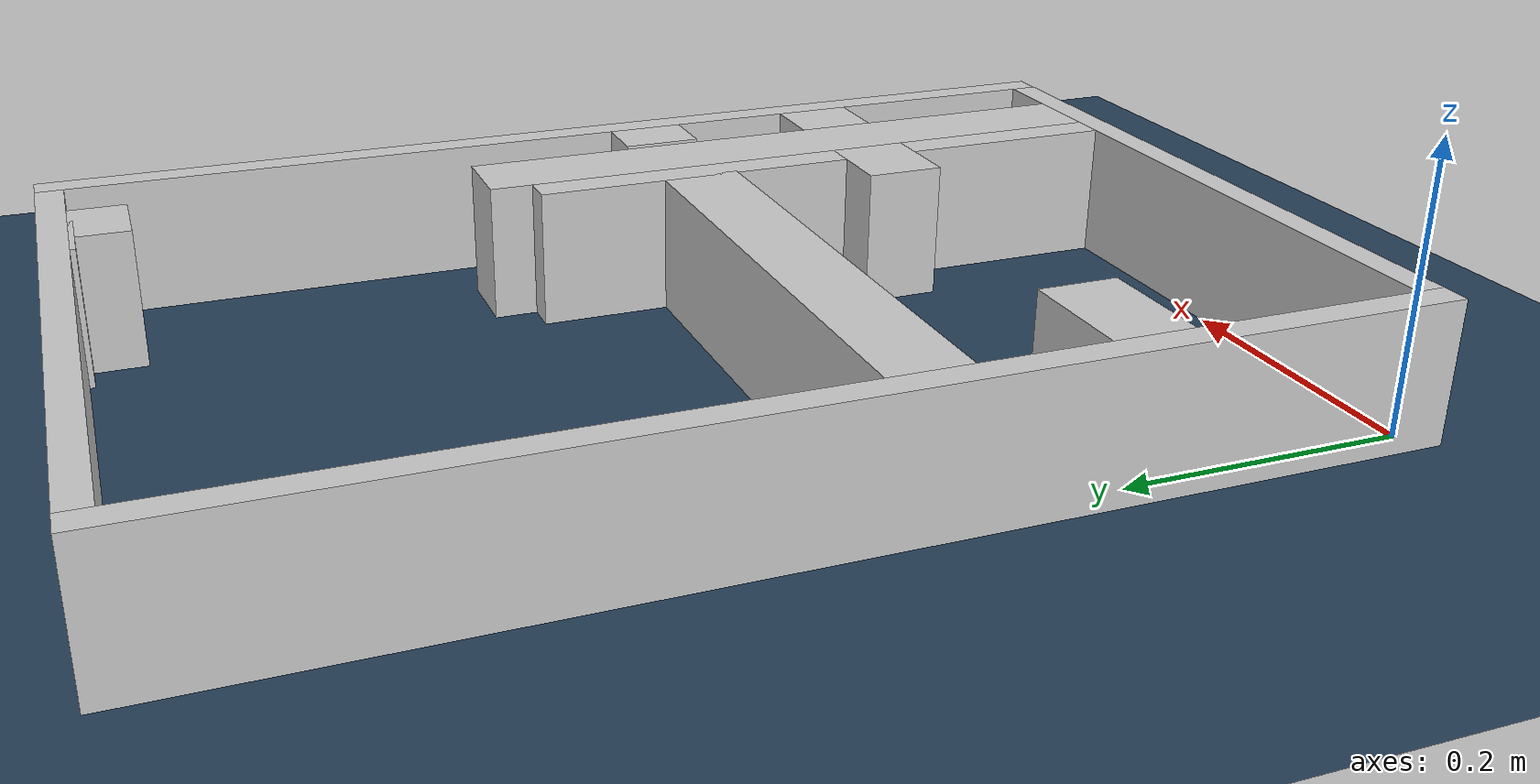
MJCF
<?xml version="1.0" ?>
<mujoco model="generated_real_template">
  <compiler angle="degree"/>
  <option timestep="0.002" integrator="implicitfast" iterations="100" cone="elliptic"/>
  <default>
    <geom density="1"/>
  </default>
  <asset>
    <texture builtin="gradient" height="3072" rgb1="0.3 0.5 0.7" rgb2="0 0 0" type="skybox" width="512"/>
    <texture builtin="checker" height="300" mark="edge" markrgb="0.8 0.8 0.8" name="groundplane" rgb1="0.2 0.3 0.4" rgb2="0.1 0.2 0.3" type="2d" width="300"/>
    <material name="groundplane" reflectance="0.2" texrepeat="5 5" texture="groundplane" texuniform="true"/>
  </asset>
  <worldbody>
    <light dir="0 0 -1" directional="true" pos="0 0 1.5"/>
    <geom name="floor" type="plane" condim="4" friction="0.5 0.005 0.001" material="groundplane" size="0 0 0.05"/>
    <body name="walls">
      <geom name="wall_boundary_left" type="box" condim="4" friction="1.0 0.005 0.0001" rgba="0.8 0.8 0.8 1" pos="-0.010000 0.387500 0.050000" euler="0 0 0.000000" size="0.010000 0.407500 0.050000"/>
      <geom name="wall_boundary_right" type="box" condim="4" friction="1.0 0.005 0.0001" rgba="0.8 0.8 0.8 1" pos="0.500000 0.387500 0.050000" euler="0 0 0.000000" size="0.010000 0.407500 0.050000"/>
      <geom name="wall_boundary_bottom" type="box" condim="4" friction="1.0 0.005 0.0001" rgba="0.8 0.8 0.8 1" pos="0.245000 -0.010000 0.050000" euler="0 0 0.000000" size="0.245000 0.010000 0.050000"/>
      <geom name="wall_boundary_top" type="box" condim="4" friction="1.0 0.005 0.0001" rgba="0.8 0.8 0.8 1" pos="0.245000 0.785000 0.050000" euler="0 0 0.000000" size="0.245000 0.010000 0.050000"/>
      <geom name="wall_inner_1_1" type="box" condim="4" friction="1.0 0.005 0.0001" rgba="0.8 0.8 0.8 1" pos="0.413032 0.243817 0.050000" euler="0 0 90.000000" size="0.243817 0.028500 0.050000"/>
      <geom name="wall_inner_1_2" type="box" condim="4" friction="1.0 0.005 0.0001" rgba="0.8 0.8 0.8 1" pos="0.413032 0.754650 0.050000" euler="0 0 90.000000" size="0.020350 0.028500 0.050000"/>
      <geom name="wall_inner_2_1" type="box" condim="4" friction="1.0 0.005 0.0001" rgba="0.8 0.8 0.8 1" pos="0.181803 0.334500 0.050000" euler="0 0 0.000000" size="0.181803 0.028500 0.050000"/>
      <geom name="wall_inner_2_2" type="box" condim="4" friction="1.0 0.005 0.0001" rgba="0.8 0.8 0.8 1" pos="0.469101 0.334500 0.050000" euler="0 0 0.000000" size="0.020899 0.028500 0.050000"/>
      <geom name="wall_inner_3_1" type="box" condim="4" friction="1.0 0.005 0.0001" rgba="0.8 0.8 0.8 1" pos="0.389036 0.228255 0.050000" euler="0 0 90.000000" size="0.228255 0.028500 0.050000"/>
      <geom name="wall_inner_3_2" type="box" condim="4" friction="1.0 0.005 0.0001" rgba="0.8 0.8 0.8 1" pos="0.389036 0.773125 0.050000" euler="0 0 90.000000" size="0.001875 0.028500 0.050000"/>
      <geom name="wall_inner_4_1" type="box" condim="4" friction="1.0 0.005 0.0001" rgba="0.8 0.8 0.8 1" pos="0.041814 0.189102 0.050000" euler="0 0 0.000000" size="0.041814 0.028500 0.050000"/>
      <geom name="wall_inner_4_2" type="box" condim="4" friction="1.0 0.005 0.0001" rgba="0.8 0.8 0.8 1" pos="0.404380 0.189102 0.050000" euler="0 0 0.000000" size="0.085620 0.028500 0.050000"/>
    </body>
  </worldbody>
</mujoco>
